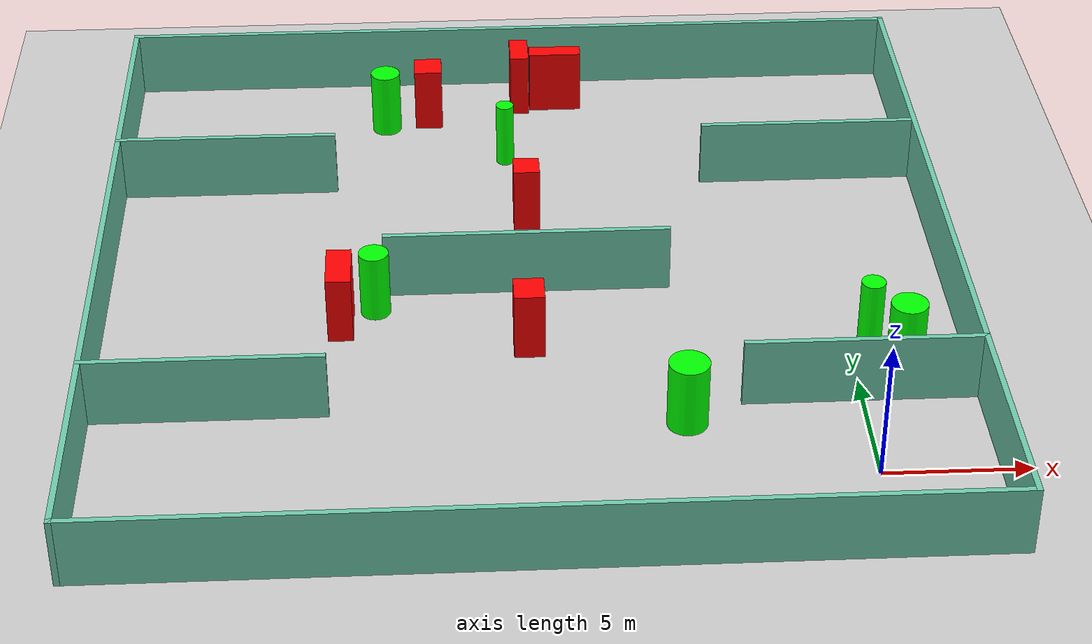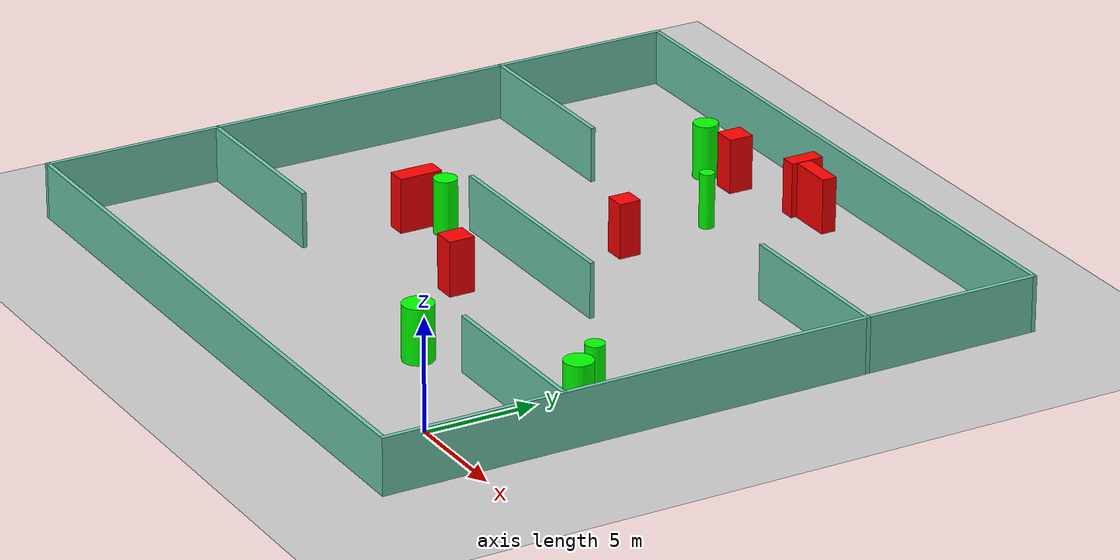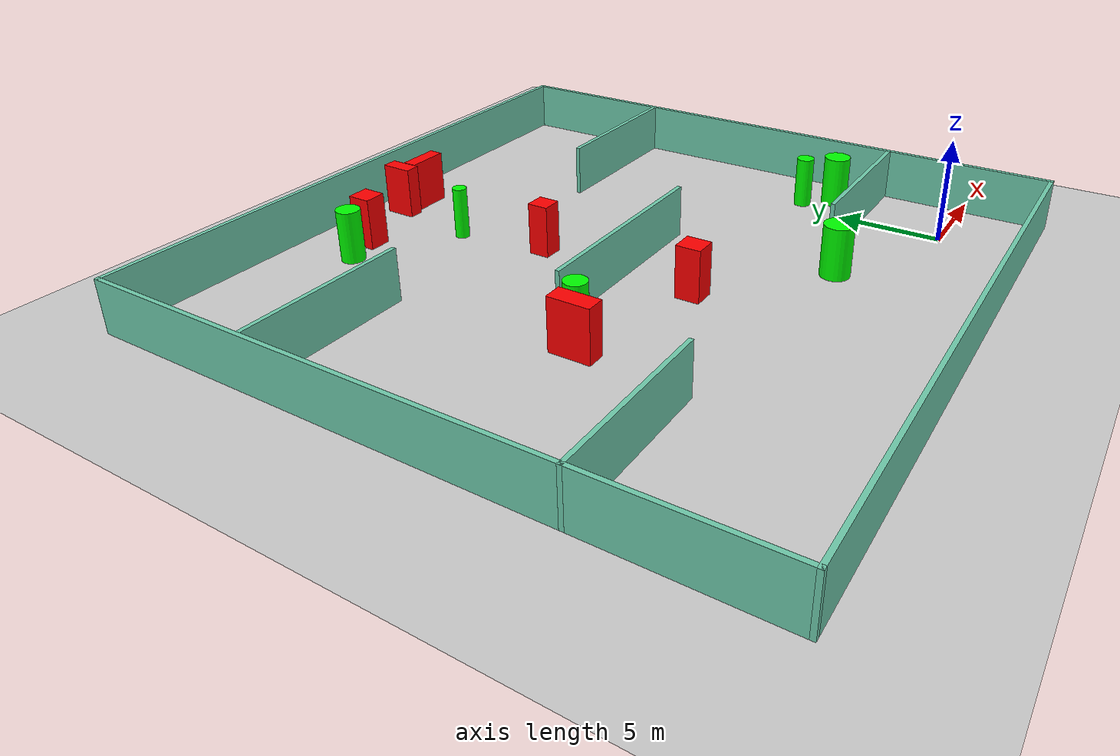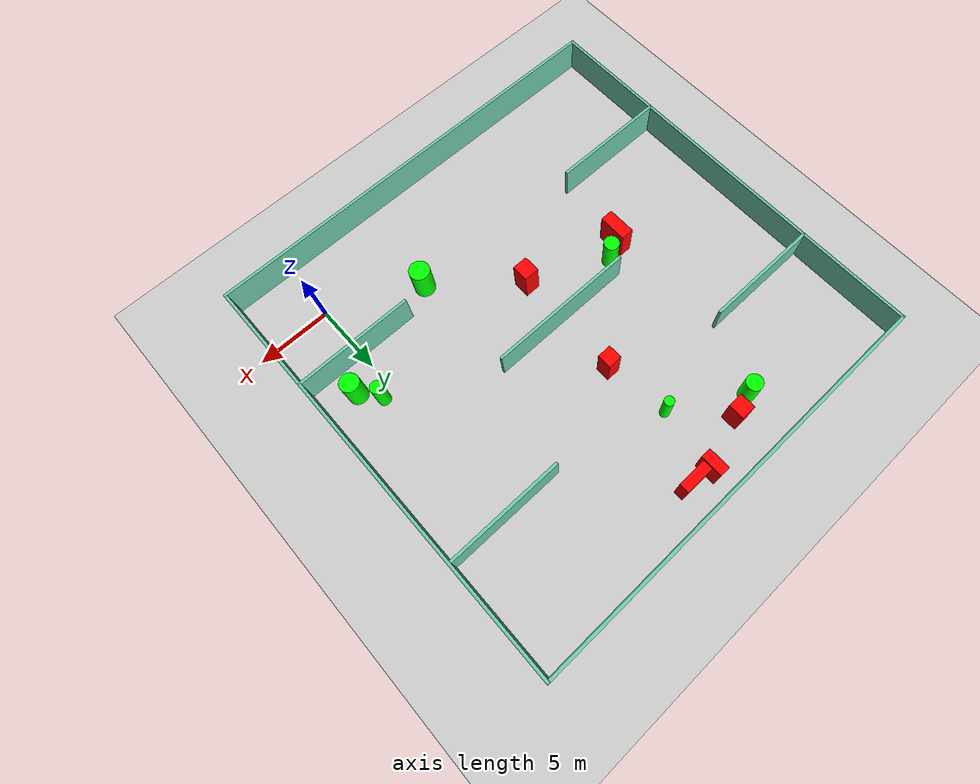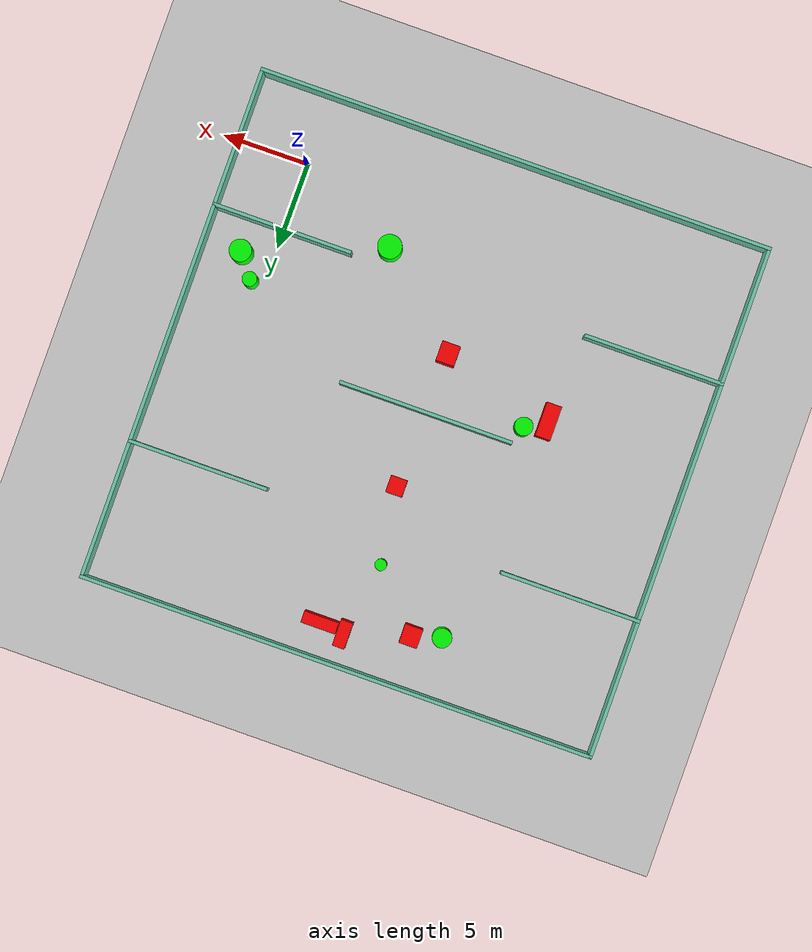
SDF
<sdf version="1.7">
 <world name="default">
  <light name="sun" type="directional">
   <pose>0 0 10 0 -0 0</pose>
   <diffuse>0.8 0.8 0.8 1</diffuse>
   <specular>0.2 0.2 0.2 1</specular>
   <attenuation>
    <range>1000</range>
    <constant>0.9</constant>
    <linear>0.01</linear>
    <quadratic>0.001</quadratic>
   </attenuation>
   <direction>-0.5 0.1 -0.9</direction>
   <spot><inner_angle>0</inner_angle><outer_angle>0</outer_angle><falloff>0</falloff></spot>
  </light>
  <model name="ground_plane">
   <static>1</static>
   <link name="link">
    <collision name="collision">
     <geometry><plane><normal>0 0 1</normal><size>100 100</size></plane></geometry>
     <surface>
      <contact><collide_bitmask>65535</collide_bitmask></contact>
      <friction><ode><mu>100</mu><mu2>50</mu2></ode></friction>
     </surface>
    </collision>
    <visual name="visual">
     <cast_shadows>0</cast_shadows>
     <geometry><plane><normal>0 0 1</normal><size>100 100</size></plane></geometry>
     <material>
      <script><uri>file://media/materials/scripts/gazebo.material</uri><name>Gazebo/Grey</name></script>
     </material>
    </visual>
   </link>
  </model>
  <gravity>0 0 -9.8</gravity>
  <magnetic_field>6e-06 2.3e-05 -4.2e-05</magnetic_field>
  <atmosphere type="adiabatic"/>
  <physics type="ode">
   <max_step_size>0.001</max_step_size>
   <real_time_factor>1</real_time_factor>
   <real_time_update_rate>1000</real_time_update_rate>
  </physics>
  <scene><ambient>0.4 0.4 0.4 1</ambient><background>0.7 0.7 0.7 1</background><shadows>1</shadows></scene>
  <spherical_coordinates>
   <surface_model>EARTH_WGS84</surface_model>
   <latitude_deg>0</latitude_deg>
   <longitude_deg>0</longitude_deg>
   <elevation>0</elevation>
   <heading_deg>0</heading_deg>
  </spherical_coordinates>
  <model name="my_base_walls">
   <link name="Wall_10">
    <collision name="Wall_10_Collision">
     <geometry><box><size>8.2 0.2 2.5</size></box></geometry>
     <pose>0 0 1.25 0 -0 0</pose>
    </collision>
    <visual name="Wall_10_Visual">
     <pose>0 0 1.25 0 -0 0</pose>
     <geometry><box><size>8.2 0.2 2.5</size></box></geometry>
     <material>
      <script><uri>file://media/materials/scripts/gazebo.material</uri><name>Gazebo/Grey</name></script>
      <ambient>0.435294 0.796078 0.67451 1</ambient>
     </material>
     <meta><layer>0</layer></meta>
    </visual>
    <pose>-11 -7 0 0 -0 0</pose>
   </link>
   <link name="Wall_12">
    <collision name="Wall_12_Collision">
     <geometry><box><size>8.2 0.2 2.5</size></box></geometry>
     <pose>0 0 1.25 0 -0 0</pose>
    </collision>
    <visual name="Wall_12_Visual">
     <pose>0 0 1.25 0 -0 0</pose>
     <geometry><box><size>8.2 0.2 2.5</size></box></geometry>
     <material>
      <script><uri>file://media/materials/scripts/gazebo.material</uri><name>Gazebo/Grey</name></script>
      <ambient>0.435294 0.796078 0.67451 1</ambient>
     </material>
     <meta><layer>0</layer></meta>
    </visual>
    <pose>-11 7 0 0 -0 0</pose>
   </link>
   <link name="Wall_14">
    <collision name="Wall_14_Collision">
     <geometry><box><size>8.2 0.2 2.5</size></box></geometry>
     <pose>0 0 1.25 0 -0 0</pose>
    </collision>
    <visual name="Wall_14_Visual">
     <pose>0 0 1.25 0 -0 0</pose>
     <geometry><box><size>8.2 0.2 2.5</size></box></geometry>
     <material>
      <script><uri>file://media/materials/scripts/gazebo.material</uri><name>Gazebo/Grey</name></script>
      <ambient>0.435294 0.796078 0.67451 1</ambient>
     </material>
     <meta><layer>0</layer></meta>
    </visual>
    <pose>11 7 0 0 -0 3.14159</pose>
   </link>
   <link name="Wall_16">
    <collision name="Wall_16_Collision">
     <geometry><box><size>10.2 0.2 2.5</size></box></geometry>
     <pose>0 0 1.25 0 -0 0</pose>
    </collision>
    <visual name="Wall_16_Visual">
     <pose>0 0 1.25 0 -0 0</pose>
     <geometry><box><size>10.2 0.2 2.5</size></box></geometry>
     <material>
      <script><uri>file://media/materials/scripts/gazebo.material</uri><name>Gazebo/Grey</name></script>
      <ambient>0.435294 0.796078 0.67451 1</ambient>
     </material>
     <meta><layer>0</layer></meta>
    </visual>
    <pose>0 0 0 0 -0 3.14159</pose>
   </link>
   <link name="Wall_2">
    <collision name="Wall_2_Collision">
     <geometry><box><size>30.2 0.2 2.5</size></box></geometry>
     <pose>0 0 1.25 0 -0 0</pose>
    </collision>
    <visual name="Wall_2_Visual">
     <pose>0 0 1.25 0 -0 0</pose>
     <geometry><box><size>30.2 0.2 2.5</size></box></geometry>
     <material>
      <script><uri>file://media/materials/scripts/gazebo.material</uri><name>Gazebo/Grey</name></script>
      <ambient>0.435294 0.796078 0.67451 1</ambient>
     </material>
     <meta><layer>0</layer></meta>
    </visual>
    <pose>0 -15 0 0 -0 3.14159</pose>
   </link>
   <link name="Wall_3">
    <collision name="Wall_3_Collision">
     <geometry><box><size>30.2 0.2 2.5</size></box></geometry>
     <pose>0 0 1.25 0 -0 0</pose>
    </collision>
    <visual name="Wall_3_Visual">
     <pose>0 0 1.25 0 -0 0</pose>
     <geometry><box><size>30.2 0.2 2.5</size></box></geometry>
     <material>
      <script><uri>file://media/materials/scripts/gazebo.material</uri><name>Gazebo/Grey</name></script>
      <ambient>0.435294 0.796078 0.67451 1</ambient>
     </material>
     <meta><layer>0</layer></meta>
    </visual>
    <pose>-15 0 0 0 -0 1.5708</pose>
   </link>
   <link name="Wall_4">
    <collision name="Wall_4_Collision">
     <geometry><box><size>30.2 0.2 2.5</size></box></geometry>
     <pose>0 0 1.25 0 -0 0</pose>
    </collision>
    <visual name="Wall_4_Visual">
     <pose>0 0 1.25 0 -0 0</pose>
     <geometry><box><size>30.2 0.2 2.5</size></box></geometry>
     <material>
      <script><uri>file://media/materials/scripts/gazebo.material</uri><name>Gazebo/Grey</name></script>
      <ambient>0.435294 0.796078 0.67451 1</ambient>
     </material>
     <meta><layer>0</layer></meta>
    </visual>
    <pose>0 15 0 0 -0 0</pose>
   </link>
   <link name="Wall_6">
    <collision name="Wall_6_Collision">
     <geometry><box><size>30.2 0.2 2.5</size></box></geometry>
     <pose>0 0 1.25 0 -0 0</pose>
    </collision>
    <visual name="Wall_6_Visual">
     <pose>0 0 1.25 0 -0 0</pose>
     <geometry><box><size>30.2 0.2 2.5</size></box></geometry>
     <material>
      <script><uri>file://media/materials/scripts/gazebo.material</uri><name>Gazebo/Grey</name></script>
      <ambient>0.435294 0.796078 0.67451 1</ambient>
     </material>
     <meta><layer>0</layer></meta>
    </visual>
    <pose>15 0 0 0 -0 1.5708</pose>
   </link>
   <link name="Wall_8">
    <collision name="Wall_8_Collision">
     <geometry><box><size>8.2 0.2 2.5</size></box></geometry>
     <pose>0 0 1.25 0 -0 0</pose>
    </collision>
    <visual name="Wall_8_Visual">
     <pose>0 0 1.25 0 -0 0</pose>
     <geometry><box><size>8.2 0.2 2.5</size></box></geometry>
     <material>
      <script><uri>file://media/materials/scripts/gazebo.material</uri><name>Gazebo/Grey</name></script>
      <ambient>0.435294 0.796078 0.67451 1</ambient>
     </material>
     <meta><layer>0</layer></meta>
    </visual>
    <pose>11 -7 0 0 -0 3.14159</pose>
   </link>
   <static>1</static>
   <pose>-11 11 0 0 -0 0</pose>
  </model>
  <model name="cylinder1">
   <static>1</static>
   <link name="link">
    <inertial>
     <mass>1</mass>
     <inertia><ixx>0.5</ixx><ixy>0</ixy><ixz>0</ixz><iyy>0.5</iyy><iyz>0</iyz><izz>1</izz></inertia>
    </inertial>
    <collision name="collision">
     <geometry><cylinder><radius>0.5284559753546401</radius><length>2.5</length></cylinder></geometry>
    </collision>
    <visual name="visual">
     <geometry><cylinder><radius>0.5284559753546401</radius><length>2.5</length></cylinder></geometry>
     <material>
      <ambient>0 1 0 1</ambient>
      <diffuse>0 1 0 1</diffuse>
      <specular>0.1 0.1 0.1 1</specular>
      <emissive>0 0 0 0</emissive>
     </material>
    </visual>
   </link>
   <pose>-16.394611083437752 9.923325617115653 1.25 0 0 0</pose>
  </model>
  <model name="cylinder2">
   <static>1</static>
   <link name="link">
    <inertial>
     <mass>1</mass>
     <inertia><ixx>0.5</ixx><ixy>0</ixy><ixz>0</ixz><iyy>0.5</iyy><iyz>0</iyz><izz>1</izz></inertia>
    </inertial>
    <collision name="collision">
     <geometry><cylinder><radius>0.6974445987053535</radius><length>2.5</length></cylinder></geometry>
    </collision>
    <visual name="visual">
     <geometry><cylinder><radius>0.6974445987053535</radius><length>2.5</length></cylinder></geometry>
     <material>
      <ambient>0 1 0 1</ambient>
      <diffuse>0 1 0 1</diffuse>
      <specular>0.1 0.1 0.1 1</specular>
      <emissive>0 0 0 0</emissive>
     </material>
    </visual>
   </link>
   <pose>-6.01512429648027 2.9668136406222096 1.25 0 0 0</pose>
  </model>
  <model name="cylinder3">
   <static>1</static>
   <link name="link">
    <inertial>
     <mass>1</mass>
     <inertia><ixx>0.5</ixx><ixy>0</ixy><ixz>0</ixz><iyy>0.5</iyy><iyz>0</iyz><izz>1</izz></inertia>
    </inertial>
    <collision name="collision">
     <geometry><cylinder><radius>0.33426344193510205</radius><length>2.5</length></cylinder></geometry>
    </collision>
    <visual name="visual">
     <geometry><cylinder><radius>0.33426344193510205</radius><length>2.5</length></cylinder></geometry>
     <material>
      <ambient>0 1 0 1</ambient>
      <diffuse>0 1 0 1</diffuse>
      <specular>0.1 0.1 0.1 1</specular>
      <emissive>0 0 0 0</emissive>
     </material>
    </visual>
   </link>
   <pose>-11.46412667190733 19.836012793365626 1.25 0 0 0</pose>
  </model>
  <model name="cylinder4">
   <static>1</static>
   <link name="link">
    <inertial>
     <mass>1</mass>
     <inertia><ixx>0.5</ixx><ixy>0</ixy><ixz>0</ixz><iyy>0.5</iyy><iyz>0</iyz><izz>1</izz></inertia>
    </inertial>
    <collision name="collision">
     <geometry><cylinder><radius>0.4243463426005713</radius><length>2.5</length></cylinder></geometry>
    </collision>
    <visual name="visual">
     <geometry><cylinder><radius>0.4243463426005713</radius><length>2.5</length></cylinder></geometry>
     <material>
      <ambient>0 1 0 1</ambient>
      <diffuse>0 1 0 1</diffuse>
      <specular>0.1 0.1 0.1 1</specular>
      <emissive>0 0 0 0</emissive>
     </material>
    </visual>
   </link>
   <pose>0.7443166732162894 7.282033713373227 1.25 0 0 0</pose>
  </model>
  <model name="cylinder5">
   <static>1</static>
   <link name="link">
    <inertial>
     <mass>1</mass>
     <inertia><ixx>0.5</ixx><ixy>0</ixy><ixz>0</ixz><iyy>0.5</iyy><iyz>0</iyz><izz>1</izz></inertia>
    </inertial>
    <collision name="collision">
     <geometry><cylinder><radius>0.6422451974563254</radius><length>2.5</length></cylinder></geometry>
    </collision>
    <visual name="visual">
     <geometry><cylinder><radius>0.6422451974563254</radius><length>2.5</length></cylinder></geometry>
     <material>
      <ambient>0 1 0 1</ambient>
      <diffuse>0 1 0 1</diffuse>
      <specular>0.1 0.1 0.1 1</specular>
      <emissive>0 0 0 0</emissive>
     </material>
    </visual>
   </link>
   <pose>1.761427344533601 5.951826750778732 1.25 0 0 0</pose>
  </model>
  <model name="cylinder6">
   <static>1</static>
   <link name="link">
    <inertial>
     <mass>1</mass>
     <inertia><ixx>0.5</ixx><ixy>0</ixy><ixz>0</ixz><iyy>0.5</iyy><iyz>0</iyz><izz>1</izz></inertia>
    </inertial>
    <collision name="collision">
     <geometry><cylinder><radius>0.5577463986096056</radius><length>2.5</length></cylinder></geometry>
    </collision>
    <visual name="visual">
     <geometry><cylinder><radius>0.5577463986096056</radius><length>2.5</length></cylinder></geometry>
     <material>
      <ambient>0 1 0 1</ambient>
      <diffuse>0 1 0 1</diffuse>
      <specular>0.1 0.1 0.1 1</specular>
      <emissive>0 0 0 0</emissive>
     </material>
    </visual>
   </link>
   <pose>-16.040571643767784 22.527056942830512 1.25 0 0 0</pose>
  </model>
  <model name="box1">
   <static>1</static>
   <link name="link">
    <inertial>
     <mass>1</mass>
     <inertia><ixx>0.083</ixx><ixy>0</ixy><ixz>0</ixz><iyy>0.083</iyy><iyz>0</iyz><izz>0.083</izz></inertia>
    </inertial>
    <collision name="collision">
     <geometry><box><size>1.0665635986591604 1.1727155145917216 2.5</size></box></geometry>
    </collision>
    <visual name="visual">
     <geometry><box><size>1.0665635986591604 1.1727155145917216 2.5</size></box></geometry>
     <material>
      <ambient>1 0 0 1</ambient>
      <diffuse>1 0 0 1</diffuse>
      <specular>0.1 0.1 0.1 1</specular>
      <emissive>0 0 0 0</emissive>
     </material>
    </visual>
    <sensor name="my_contact" type="contact">
     <contact><collision>box_collision</collision><topic>__default_topic__</topic></contact>
    </sensor>
   </link>
   <pose>-11.07322530214336 7.498892137774229 1.25 0 0 0</pose>
  </model>
  <model name="box2">
   <static>1</static>
   <link name="link">
    <inertial>
     <mass>1</mass>
     <inertia><ixx>0.083</ixx><ixy>0</ixy><ixz>0</ixz><iyy>0.083</iyy><iyz>0</iyz><izz>0.083</izz></inertia>
    </inertial>
    <collision name="collision">
     <geometry><box><size>2.023241610144183 0.6692831190976987 2.5</size></box></geometry>
    </collision>
    <visual name="visual">
     <geometry><box><size>2.023241610144183 0.6692831190976987 2.5</size></box></geometry>
     <material>
      <ambient>1 0 0 1</ambient>
      <diffuse>1 0 0 1</diffuse>
      <specular>0.1 0.1 0.1 1</specular>
      <emissive>0 0 0 0</emissive>
     </material>
    </visual>
    <sensor name="my_contact" type="contact">
     <contact><collision>box_collision</collision><topic>__default_topic__</topic></contact>
    </sensor>
   </link>
   <pose>-9.347328389168547 23.977556716442656 1.25 0 0 0</pose>
  </model>
  <model name="box3">
   <static>1</static>
   <link name="link">
    <inertial>
     <mass>1</mass>
     <inertia><ixx>0.083</ixx><ixy>0</ixy><ixz>0</ixz><iyy>0.083</iyy><iyz>0</iyz><izz>0.083</izz></inertia>
    </inertial>
    <collision name="collision">
     <geometry><box><size>0.7123998861504527 1.527135008526267 2.5</size></box></geometry>
    </collision>
    <visual name="visual">
     <geometry><box><size>0.7123998861504527 1.527135008526267 2.5</size></box></geometry>
     <material>
      <ambient>1 0 0 1</ambient>
      <diffuse>1 0 0 1</diffuse>
      <specular>0.1 0.1 0.1 1</specular>
      <emissive>0 0 0 0</emissive>
     </material>
    </visual>
    <sensor name="my_contact" type="contact">
     <contact><collision>box_collision</collision><topic>__default_topic__</topic></contact>
    </sensor>
   </link>
   <pose>-10.761198100548707 24.171618335118687 1.25 0 0 0</pose>
  </model>
  <model name="box4">
   <static>1</static>
   <link name="link">
    <inertial>
     <mass>1</mass>
     <inertia><ixx>0.083</ixx><ixy>0</ixy><ixz>0</ixz><iyy>0.083</iyy><iyz>0</iyz><izz>0.083</izz></inertia>
    </inertial>
    <collision name="collision">
     <geometry><box><size>1.0564537388382 1.1122651715972167 2.5</size></box></geometry>
    </collision>
    <visual name="visual">
     <geometry><box><size>1.0564537388382 1.1122651715972167 2.5</size></box></geometry>
     <material>
      <ambient>1 0 0 1</ambient>
      <diffuse>1 0 0 1</diffuse>
      <specular>0.1 0.1 0.1 1</specular>
      <emissive>0 0 0 0</emissive>
     </material>
    </visual>
    <sensor name="my_contact" type="contact">
     <contact><collision>box_collision</collision><topic>__default_topic__</topic></contact>
    </sensor>
   </link>
   <pose>-14.37766027131369 22.998412819736934 1.25 0 0 0</pose>
  </model>
  <model name="box5">
   <static>1</static>
   <link name="link">
    <inertial>
     <mass>1</mass>
     <inertia><ixx>0.083</ixx><ixy>0</ixy><ixz>0</ixz><iyy>0.083</iyy><iyz>0</iyz><izz>0.083</izz></inertia>
    </inertial>
    <collision name="collision">
     <geometry><box><size>0.8832881837849829 1.9834405498008145 2.5</size></box></geometry>
    </collision>
    <visual name="visual">
     <geometry><box><size>0.8832881837849829 1.9834405498008145 2.5</size></box></geometry>
     <material>
      <ambient>1 0 0 1</ambient>
      <diffuse>1 0 0 1</diffuse>
      <specular>0.1 0.1 0.1 1</specular>
      <emissive>0 0 0 0</emissive>
     </material>
    </visual>
    <sensor name="my_contact" type="contact">
     <contact><collision>box_collision</collision><topic>__default_topic__</topic></contact>
    </sensor>
   </link>
   <pose>-17.600859226764676 9.185231849834766 1.25 0 0 0</pose>
  </model>
  <model name="box6">
   <static>1</static>
   <link name="link">
    <inertial>
     <mass>1</mass>
     <inertia><ixx>0.083</ixx><ixy>0</ixy><ixz>0</ixz><iyy>0.083</iyy><iyz>0</iyz><izz>0.083</izz></inertia>
    </inertial>
    <collision name="collision">
     <geometry><box><size>0.9582529164116562 0.9956642433253575 2.5</size></box></geometry>
    </collision>
    <visual name="visual">
     <geometry><box><size>0.9582529164116562 0.9956642433253575 2.5</size></box></geometry>
     <material>
      <ambient>1 0 0 1</ambient>
      <diffuse>1 0 0 1</diffuse>
      <specular>0.1 0.1 0.1 1</specular>
      <emissive>0 0 0 0</emissive>
     </material>
    </visual>
    <sensor name="my_contact" type="contact">
     <contact><collision>box_collision</collision><topic>__default_topic__</topic></contact>
    </sensor>
   </link>
   <pose>-10.829389820055903 15.421433828391347 1.25 0 0 0</pose>
  </model>
 </world>
</sdf>
